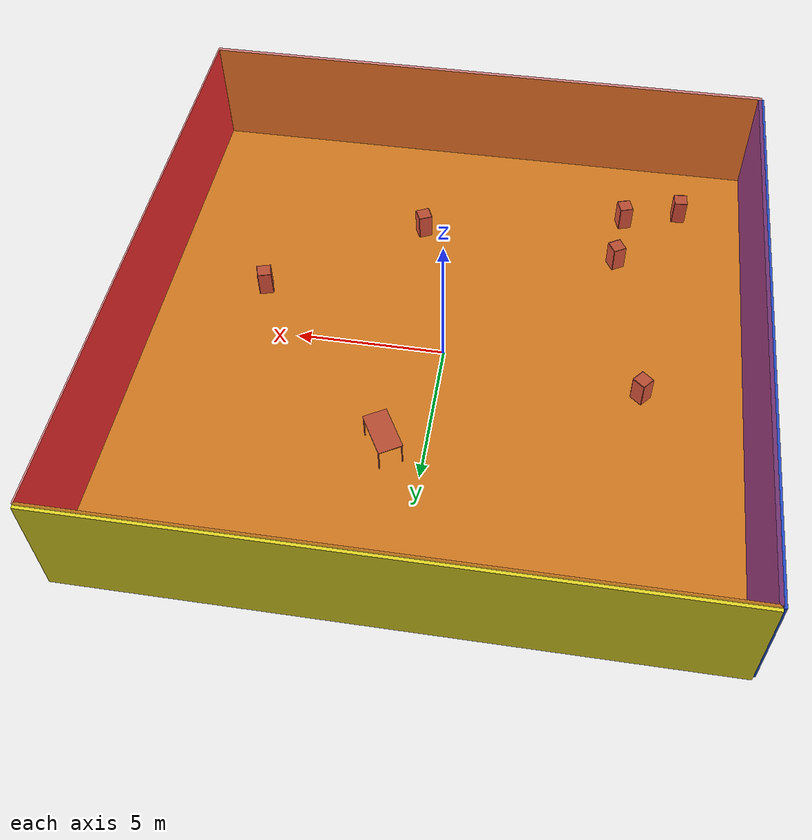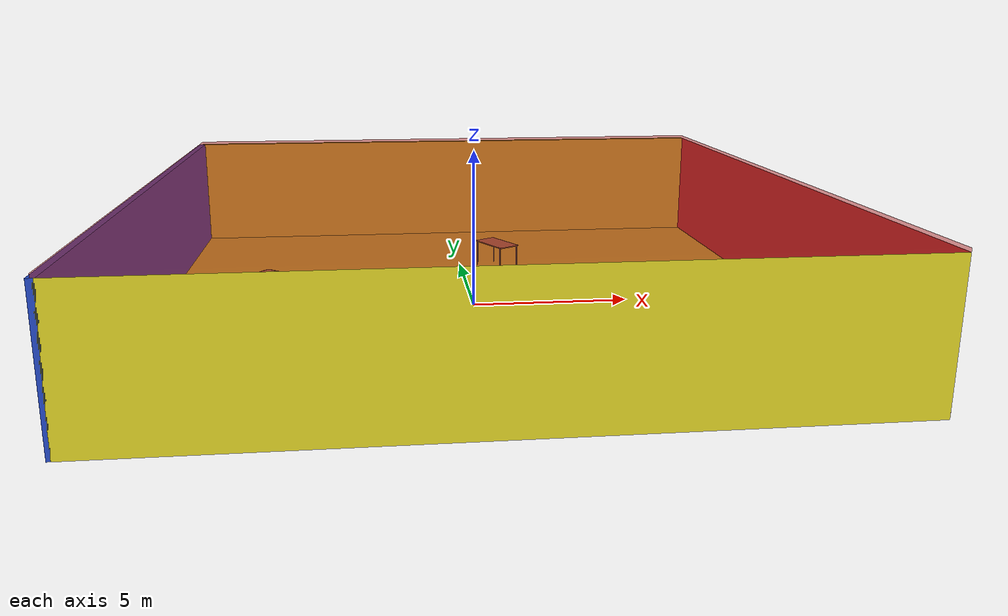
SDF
<sdf version="1.4">
 <world name="default">
  <physics type="ode">
   <max_step_size>0.001</max_step_size>
   <real_time_factor>1</real_time_factor>
   <real_time_update_rate>1000</real_time_update_rate>
   <gravity>0 0 -9.8</gravity>
  </physics>
  <scene><ambient>0.4 0.4 0.4 1</ambient><background>0.7 0.7 0.7 1</background><shadows>1</shadows></scene>
  <model name="Surrounding">
   <static>1</static>
   <link name="Ceiling">
    <collision name="Ceiling_Collision"><geometry><box><size>20 20 0.1</size></box></geometry></collision>
    <visual name="Ceiling_Visual">
     <geometry><box><size>20 20 0.1</size></box></geometry>
     <material>
      <script><uri>file://media/materials/scripts/gazebo.material</uri><name>Gazebo/RedTransparent</name></script>
     </material>
    </visual>
    <pose>0 0 4.05 0 0 0</pose>
   </link>
   <link name="Wall_South">
    <collision name="Wall_South_Collision">
     <geometry><box><size>20 0 4</size></box></geometry>
     <pose>0 0 2 0 -0 0</pose>
    </collision>
    <visual name="Wall_South_Visual">
     <pose>0 0 2 0 -0 0</pose>
     <geometry><box><size>20 0 4</size></box></geometry>
     <material>
      <script><uri>file://media/materials/scripts/gazebo.material</uri><name>Gazebo/Yellow</name></script>
     </material>
    </visual>
    <velocity_decay><linear>0</linear><angular>0</angular></velocity_decay>
    <pose>0 -10 0 0 -0 0</pose>
   </link>
   <link name="Wall_East">
    <collision name="Wall_21_Collision">
     <geometry><box><size>20 0 4</size></box></geometry>
     <pose>0 0 2 0 -0 0</pose>
    </collision>
    <visual name="Wall_21_Visual">
     <pose>0 0 2 0 -0 0</pose>
     <geometry><box><size>20 0 4</size></box></geometry>
     <material>
      <script><uri>file://media/materials/scripts/gazebo.material</uri><name>Gazebo/RedBright</name></script>
     </material>
    </visual>
    <velocity_decay><linear>0</linear><angular>0</angular></velocity_decay>
    <pose>10 0 0 0 -0 1.5708</pose>
   </link>
   <link name="Wall_North">
    <collision name="Wall_22_Collision">
     <geometry><box><size>20 0.2 4</size></box></geometry>
     <pose>0 0 2 0 -0 0</pose>
    </collision>
    <visual name="Wall_22_Visual">
     <pose>0 0 2 0 -0 0</pose>
     <geometry><box><size>20 0.2 4</size></box></geometry>
     <material>
      <script><uri>file://media/materials/scripts/gazebo.material</uri><name>Gazebo/Yellow</name></script>
     </material>
    </visual>
    <velocity_decay><linear>0</linear><angular>0</angular></velocity_decay>
    <pose>0 10 0 0 -0 0</pose>
   </link>
   <link name="Wall_West">
    <collision name="Wall_23_Collision">
     <geometry><box><size>20 0.2 4</size></box></geometry>
     <pose>0 0 2 0 -0 0</pose>
    </collision>
    <visual name="Wall_23_Visual">
     <pose>0 0 2 0 -0 0</pose>
     <geometry><box><size>20 0.2 4</size></box></geometry>
     <material>
      <script><uri>file://media/materials/scripts/gazebo.material</uri><name>Gazebo/BlueGlow</name></script>
     </material>
    </visual>
    <velocity_decay><linear>0</linear><angular>0</angular></velocity_decay>
    <pose>-10 0 0 0 0 -1.5708</pose>
   </link>
   <link name="Ground_link">
    <collision name="collision">
     <pose>0 0 .05 0 -0 0</pose>
     <geometry><box><size>20 20 0.1</size></box></geometry>
    </collision>
    <visual name="visual">
     <pose>0 0 .05 0 -0 0</pose>
     <geometry><box><size>20 20 0.1</size></box></geometry>
     <material>
      <script><uri>file://media/materials/scripts/gazebo.material</uri><name>Gazebo/YellowGlow</name></script>
     </material>
    </visual>
   </link>
   <static>1</static>
  </model>
  <spherical_coordinates>
   <surface_model>EARTH_WGS84</surface_model>
   <latitude_deg>0</latitude_deg>
   <longitude_deg>0</longitude_deg>
   <elevation>0</elevation>
   <heading_deg>0</heading_deg>
  </spherical_coordinates>
  <light name="lightball_0" type="diffuse">
   <diffuse>0.8 0.8 0.8 1</diffuse>
   <specular>0.2 0.2 0.2 1</specular>
   <attenuation>
    <range>100</range>
    <constant>0.7</constant>
    <linear>0.01</linear>
    <quadratic>0.001</quadratic>
   </attenuation>
   <direction>-0.5 0.1 -0.9</direction>
   <pose>-4.23569904785 -0.0598632808138 1.22327945743 0 0 0</pose>
  </light>
  <light name="lightball_1" type="diffuse">
   <diffuse>0.8 0.8 0.8 1</diffuse>
   <specular>0.2 0.2 0.2 1</specular>
   <attenuation>
    <range>100</range>
    <constant>0.7</constant>
    <linear>0.01</linear>
    <quadratic>0.001</quadratic>
   </attenuation>
   <direction>-0.5 0.1 -0.9</direction>
   <pose>9.61697994803 8.78013206408 2.69391031641 0 0 0</pose>
  </light>
  <light name="lightball_2" type="diffuse">
   <diffuse>0.8 0.8 0.8 1</diffuse>
   <specular>0.2 0.2 0.2 1</specular>
   <attenuation>
    <range>100</range>
    <constant>0.7</constant>
    <linear>0.01</linear>
    <quadratic>0.001</quadratic>
   </attenuation>
   <direction>-0.5 0.1 -0.9</direction>
   <pose>0.781096513359 9.68076004906 2.48334740014 0 0 0</pose>
  </light>
  <light name="lightball_3" type="diffuse">
   <diffuse>0.8 0.8 0.8 1</diffuse>
   <specular>0.2 0.2 0.2 1</specular>
   <attenuation>
    <range>100</range>
    <constant>0.7</constant>
    <linear>0.01</linear>
    <quadratic>0.001</quadratic>
   </attenuation>
   <direction>-0.5 0.1 -0.9</direction>
   <pose>8.09358486755 3.78895895839 1.27856709608 0 0 0</pose>
  </light>
  <light name="lightball_4" type="diffuse">
   <diffuse>0.8 0.8 0.8 1</diffuse>
   <specular>0.2 0.2 0.2 1</specular>
   <attenuation>
    <range>100</range>
    <constant>0.7</constant>
    <linear>0.01</linear>
    <quadratic>0.001</quadratic>
   </attenuation>
   <direction>-0.5 0.1 -0.9</direction>
   <pose>9.21830532448 0.652643928151 0.702627866383 0 0 0</pose>
  </light>
  <light name="lightball_5" type="diffuse">
   <diffuse>0.8 0.8 0.8 1</diffuse>
   <specular>0.2 0.2 0.2 1</specular>
   <attenuation>
    <range>100</range>
    <constant>0.7</constant>
    <linear>0.01</linear>
    <quadratic>0.001</quadratic>
   </attenuation>
   <direction>-0.5 0.1 -0.9</direction>
   <pose>-0.197653986155 6.47530810867 3.13153852239 0 0 0</pose>
  </light>
  <light name="lightball_6" type="diffuse">
   <diffuse>0.8 0.8 0.8 1</diffuse>
   <specular>0.2 0.2 0.2 1</specular>
   <attenuation>
    <range>100</range>
    <constant>0.7</constant>
    <linear>0.01</linear>
    <quadratic>0.001</quadratic>
   </attenuation>
   <direction>-0.5 0.1 -0.9</direction>
   <pose>6.68921509714 4.4139222745 0.882448652567 0 0 0</pose>
  </light>
  <light name="lightball_7" type="diffuse">
   <diffuse>0.8 0.8 0.8 1</diffuse>
   <specular>0.2 0.2 0.2 1</specular>
   <attenuation>
    <range>100</range>
    <constant>0.7</constant>
    <linear>0.01</linear>
    <quadratic>0.001</quadratic>
   </attenuation>
   <direction>-0.5 0.1 -0.9</direction>
   <pose>2.85794684652 1.57610255488 3.1303499061 0 0 0</pose>
  </light>
  <light name="lightball_8" type="diffuse">
   <diffuse>0.8 0.8 0.8 1</diffuse>
   <specular>0.2 0.2 0.2 1</specular>
   <attenuation>
    <range>100</range>
    <constant>0.7</constant>
    <linear>0.01</linear>
    <quadratic>0.001</quadratic>
   </attenuation>
   <direction>-0.5 0.1 -0.9</direction>
   <pose>7.98298298273 6.17030487345 0.989180899878 0 0 0</pose>
  </light>
  <include><uri>model://cabinet</uri><pose>-7.6387509755 -7.60098311014 0 0 0 0.0578250833313</pose></include>
  <include><uri>model://cabinet</uri><pose>-6.60284257512 0.956959955743 0 0 0 0.871893422827</pose></include>
  <include><uri>model://cabinet</uri><pose>-5.64603066641 -6.99651618599 0 0 0 0.317319315381</pose></include>
  <include><uri>model://cabinet</uri><pose>-5.46200848394 -4.90791789967 0 0 0 0.533751967672</pose></include>
  <include><uri>model://cabinet</uri><pose>1.55111253694 -5.4916854018 0 0 0 2.01409757001</pose></include>
  <include><uri>model://table</uri><pose>1.28336580119 4.1577310889 0 0 0 2.09681944723</pose></include>
  <include><uri>model://cabinet</uri><pose>6.58034029741 -1.90140927471 0 0 0 1.85593949999</pose></include>
 </world>
</sdf>

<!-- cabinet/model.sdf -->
<sdf version="1.5">
  <model name="cabinet">
    <static>true</static>
    <link name="cabinet_bottom_plate">
      <inertial>
        <pose>0 0 -1 0 0 0</pose>
        <inertia>
          <ixx>2.050000</ixx>
          <ixy>0</ixy>
          <ixz>0</ixz>
          <iyy>2.050000</iyy>
          <iyz>0</iyz>
          <izz>2.050000</izz>
        </inertia>
        <mass>25.000000</mass>
      </inertial>
      <collision name="cabinet_bottom_plate_geom">
        <pose>0 0 0.010000 0 0 0</pose>
        <geometry>
          <box>
            <size>0.450000 0.450000 0.020000</size>
          </box>
        </geometry>
      </collision>
      <visual name="cabinet_bottom_plate_geom_visual">
        <pose>0 0 0.010000 0 0 0</pose>
        <geometry>
          <box>
            <size>0.450000 0.450000 0.020000</size>
          </box>
        </geometry>
        <material>
          <script>
            <uri>model://media/materials/scripts/gazebo.material</uri>
            <name>Gazebo/Wood</name>
          </script>
        </material>
      </visual>
      <collision name="cabinet_bottom_plate_geom_cabinet_back_plate">
        <pose>0.235000 0 0.510000 0 0 0</pose>
        <geometry>
          <box>
            <size>0.020000 0.450000 1.020000</size>
          </box>
        </geometry>
      </collision>
      <visual name="cabinet_bottom_plate_geom_cabinet_back_plate_visual">
        <pose>0.235000 0 0.510000 0 0 0</pose>
        <geometry>
          <box>
            <size>0.020000 0.450000 1.020000</size>
          </box>
        </geometry>
        <material>
          <script>
            <uri>model://media/materials/scripts/gazebo.material</uri>
            <name>Gazebo/Wood</name>
          </script>
        </material>
      </visual>
      <collision name="cabinet_bottom_plate_geom_cabinet_left_plate">
        <pose>0 0.235000 0.510000 0 0 0</pose>
        <geometry>
          <box>
            <size>0.450000 0.020000 1.020000</size>
          </box>
        </geometry>
      </collision>
      <visual name="cabinet_bottom_plate_geom_cabinet_left_plate_visual">
        <pose>0 0.235000 0.510000 0 0 0</pose>
        <geometry>
          <box>
            <size>0.450000 0.020000 1.020000</size>
          </box>
        </geometry>
        <material>
          <script>
            <uri>model://media/materials/scripts/gazebo.material</uri>
            <name>Gazebo/Wood</name>
          </script>
        </material>
      </visual>
      <collision name="cabinet_bottom_plate_geom_cabinet_middle_plate">
        <pose>0 0 0.510000 0 0 0</pose>
        <geometry>
          <box>
            <size>0.450000 0.450000 0.020000</size>
          </box>
        </geometry>
      </collision>
      <visual name="cabinet_bottom_plate_geom_cabinet_middle_plate_visual">
        <pose>0 0 0.510000 0 0 0</pose>
        <geometry>
          <box>
            <size>0.450000 0.450000 0.020000</size>
          </box>
        </geometry>
        <material>
          <script>
            <uri>model://media/materials/scripts/gazebo.material</uri>
            <name>Gazebo/Wood</name>
          </script>
        </material>
      </visual>
      <collision name="cabinet_bottom_plate_geom_cabinet_right_plate">
        <pose>0 -0.235000 0.510000 0 0 0</pose>
        <geometry>
          <box>
            <size>0.450000 0.020000 1.020000</size>
          </box>
        </geometry>
      </collision>
      <visual name="cabinet_bottom_plate_geom_cabinet_right_plate_visual">
        <pose>0 -0.235000 0.510000 0 0 0</pose>
        <geometry>
          <box>
            <size>0.450000 0.020000 1.020000</size>
          </box>
        </geometry>
        <material>
          <script>
            <uri>model://media/materials/scripts/gazebo.material</uri>
            <name>Gazebo/Wood</name>
          </script>
        </material>
      </visual>
      <collision name="cabinet_bottom_plate_geom_cabinet_top_plate">
        <pose>0 0 1.010000 0 0 0</pose>
        <geometry>
          <box>
            <size>0.450000 0.450000 0.020000</size>
          </box>
        </geometry>
      </collision>
      <visual name="cabinet_bottom_plate_geom_cabinet_top_plate_visual">
        <pose>0 0 1.010000 0 0 0</pose>
        <geometry>
          <box>
            <size>0.450000 0.450000 0.020000</size>
          </box>
        </geometry>
        <material>
          <script>
            <uri>model://media/materials/scripts/gazebo.material</uri>
            <name>Gazebo/Wood</name>
          </script>
        </material>
      </visual>
    </link>
  </model>
</sdf>

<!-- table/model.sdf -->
<sdf version="1.5">
  <model name="table">
    <static>true</static>
    <link name="link">
      <collision name="surface">
        <pose>0 0 1.0 0 0 0</pose>
        <geometry>
          <box>
            <size>1.5 0.8 0.03</size>
          </box>
        </geometry>
        <surface>
          <friction>
            <ode>
              <mu>0.6</mu>
              <mu2>0.6</mu2>
            </ode>
          </friction>
        </surface>
      </collision>
      <visual name="visual1">
        <pose>0 0 1.0 0 0 0</pose>
        <geometry>
          <box>
            <size>1.5 0.8 0.03</size>
          </box>
        </geometry>
        <material>
          <script>
            <uri>model://media/materials/scripts/gazebo.material</uri>
            <name>Gazebo/Wood</name>
          </script>
        </material>
      </visual>
      <collision name="front_left_leg">
        <pose>0.68 0.38 0.5 0 0 0</pose>
        <geometry>
          <cylinder>
            <radius>0.02</radius>
            <length>1.0</length>
          </cylinder>
        </geometry>
      </collision>
      <visual name="front_left_leg">
        <pose>0.68 0.38 0.5 0 0 0</pose>
        <geometry>
          <cylinder>
            <radius>0.02</radius>
            <length>1.0</length>
          </cylinder>
        </geometry>
        <material>
          <script>
            <uri>model://media/materials/scripts/gazebo.material</uri>
            <name>Gazebo/Grey</name>
          </script>
        </material>
      </visual>
      <collision name="front_right_leg">
        <pose>0.68 -0.38 0.5 0 0 0</pose>
        <geometry>
          <cylinder>
            <radius>0.02</radius>
            <length>1.0</length>
          </cylinder>
        </geometry>
      </collision>
      <visual name="front_right_leg">
        <pose>0.68 -0.38 0.5 0 0 0</pose>
        <geometry>
          <cylinder>
            <radius>0.02</radius>
            <length>1.0</length>
          </cylinder>
        </geometry>
        <material>
          <script>
            <uri>model://media/materials/scripts/gazebo.material</uri>
            <name>Gazebo/Grey</name>
          </script>
        </material>
      </visual>
      <collision name="back_right_leg">
        <pose>-0.68 -0.38 0.5 0 0 0</pose>
        <geometry>
          <cylinder>
            <radius>0.02</radius>
            <length>1.0</length>
          </cylinder>
        </geometry>
      </collision>
      <visual name="back_right_leg">
        <pose>-0.68 -0.38 0.5 0 0 0</pose>
        <geometry>
          <cylinder>
            <radius>0.02</radius>
            <length>1.0</length>
          </cylinder>
        </geometry>
        <material>
          <script>
            <uri>model://media/materials/scripts/gazebo.material</uri>
            <name>Gazebo/Grey</name>
          </script>
        </material>
      </visual>
      <collision name="back_left_leg">
        <pose>-0.68 0.38 0.5 0 0 0</pose>
        <geometry>
          <cylinder>
            <radius>0.02</radius>
            <length>1.0</length>
          </cylinder>
        </geometry>
      </collision>
      <visual name="back_left_leg">
        <pose>-0.68 0.38 0.5 0 0 0</pose>
        <geometry>
          <cylinder>
            <radius>0.02</radius>
            <length>1.0</length>
          </cylinder>
        </geometry>
        <material>
          <script>
            <uri>model://media/materials/scripts/gazebo.material</uri>
            <name>Gazebo/Grey</name>
          </script>
        </material>
      </visual>
    </link>
  </model>
</sdf>
